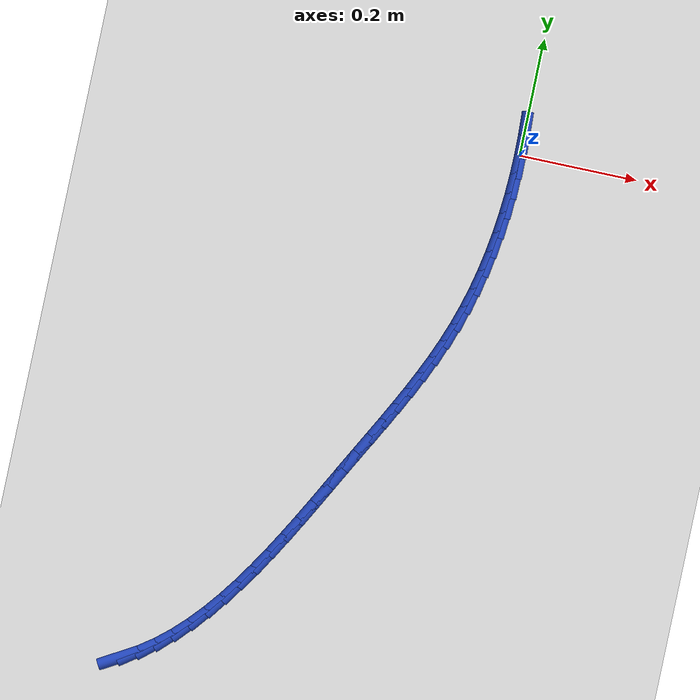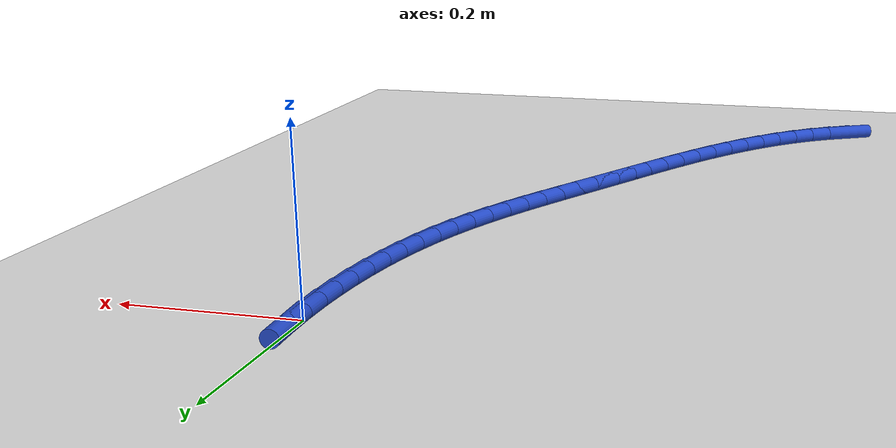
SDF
<sdf version="1.6">
 <world name="default">
  <model name="ground_plane">
   <static>1</static>
   <link name="link">
    <collision name="collision">
     <geometry><plane><normal>0 0 1</normal><size>100 100</size></plane></geometry>
     <surface><friction><ode><mu>100</mu><mu2>50</mu2></ode></friction></surface>
    </collision>
    <visual name="visual">
     <cast_shadows>0</cast_shadows>
     <geometry><plane><normal>0 0 1</normal><size>100 100</size></plane></geometry>
     <material>
      <script><uri>file://media/materials/scripts/gazebo.material</uri><name>Gazebo/WhiteGlow</name></script>
     </material>
    </visual>
   </link>
  </model>
  <model name="line">
   <link name="link_0">
    <pose>4.336808689942018e-18 6.245004513516506e-17 0.01 0 1.57 -1.5543038587531324</pose>
    <collision name="collision">
     <geometry><cylinder><radius>0.01</radius><length>0.08</length></cylinder></geometry>
    </collision>
    <visual name="visual">
     <material>
      <script><name>Gazebo/Blue</name><uri>file://media/materials/scripts/gazebo.material</uri></script>
     </material>
     <geometry><cylinder><radius>0.01</radius><length>0.08</length></cylinder></geometry>
    </visual>
   </link>
   <link name="link_178">
    <pose>-0.48115302155594414 -0.9624422230963506 0.01 0 1.57 0.5241851422341539</pose>
    <collision name="collision">
     <geometry><cylinder><radius>0.01</radius><length>0.08</length></cylinder></geometry>
    </collision>
    <visual name="visual">
     <material>
      <script><name>Gazebo/Blue</name><uri>file://media/materials/scripts/gazebo.material</uri></script>
     </material>
     <geometry><cylinder><radius>0.01</radius><length>0.08</length></cylinder></geometry>
    </visual>
   </link>
   <link name="link_179">
    <pose>-0.45351048103301 -0.9464611760117178 0.01 0 1.57 0.6187918458690828</pose>
    <collision name="collision">
     <geometry><cylinder><radius>0.01</radius><length>0.08</length></cylinder></geometry>
    </collision>
    <visual name="visual">
     <material>
      <script><name>Gazebo/Blue</name><uri>file://media/materials/scripts/gazebo.material</uri></script>
     </material>
     <geometry><cylinder><radius>0.01</radius><length>0.08</length></cylinder></geometry>
    </visual>
   </link>
   <link name="link_180">
    <pose>-0.4271974442009182 -0.9277240132820715 0.01 0 1.57 0.702849490435734</pose>
    <collision name="collision">
     <geometry><cylinder><radius>0.01</radius><length>0.08</length></cylinder></geometry>
    </collision>
    <visual name="visual">
     <material>
      <script><name>Gazebo/Blue</name><uri>file://media/materials/scripts/gazebo.material</uri></script>
     </material>
     <geometry><cylinder><radius>0.01</radius><length>0.08</length></cylinder></geometry>
    </visual>
   </link>
   <link name="link_181">
    <pose>-0.4021246388630939 -0.9064830553623443 0.01 0 1.57 0.7763417850840822</pose>
    <collision name="collision">
     <geometry><cylinder><radius>0.01</radius><length>0.08</length></cylinder></geometry>
    </collision>
    <visual name="visual">
     <material>
      <script><name>Gazebo/Blue</name><uri>file://media/materials/scripts/gazebo.material</uri></script>
     </material>
     <geometry><cylinder><radius>0.01</radius><length>0.08</length></cylinder></geometry>
    </visual>
   </link>
   <link name="link_182">
    <pose>-0.37820279282296215 -0.8829906227074681 0.01 0 1.57 0.839767134298008</pose>
    <collision name="collision">
     <geometry><cylinder><radius>0.01</radius><length>0.08</length></cylinder></geometry>
    </collision>
    <visual name="visual">
     <material>
      <script><name>Gazebo/Blue</name><uri>file://media/materials/scripts/gazebo.material</uri></script>
     </material>
     <geometry><cylinder><radius>0.01</radius><length>0.08</length></cylinder></geometry>
    </visual>
   </link>
   <link name="link_183">
    <pose>-0.35534263388394766 -0.8574990357723743 0.01 0 1.57 0.893887557208069</pose>
    <collision name="collision">
     <geometry><cylinder><radius>0.01</radius><length>0.08</length></cylinder></geometry>
    </collision>
    <visual name="visual">
     <material>
      <script><name>Gazebo/Blue</name><uri>file://media/materials/scripts/gazebo.material</uri></script>
     </material>
     <geometry><cylinder><radius>0.01</radius><length>0.08</length></cylinder></geometry>
    </visual>
   </link>
   <link name="link_184">
    <pose>-0.3334548898494765 -0.8302606150119963 0.01 0 1.57 0.9395477755431357</pose>
    <collision name="collision">
     <geometry><cylinder><radius>0.01</radius><length>0.08</length></cylinder></geometry>
    </collision>
    <visual name="visual">
     <material>
      <script><name>Gazebo/Blue</name><uri>file://media/materials/scripts/gazebo.material</uri></script>
     </material>
     <geometry><cylinder><radius>0.01</radius><length>0.08</length></cylinder></geometry>
    </visual>
   </link>
   <link name="link_185">
    <pose>-0.3124502885229733 -0.8015276808812651 0.01 0 1.57 0.9775620496840356</pose>
    <collision name="collision">
     <geometry><cylinder><radius>0.01</radius><length>0.08</length></cylinder></geometry>
    </collision>
    <visual name="visual">
     <material>
      <script><name>Gazebo/Blue</name><uri>file://media/materials/scripts/gazebo.material</uri></script>
     </material>
     <geometry><cylinder><radius>0.01</radius><length>0.08</length></cylinder></geometry>
    </visual>
   </link>
   <link name="link_186">
    <pose>-0.2922395577078632 -0.7715525538351133 0.01 0 1.57 1.0086515950705515</pose>
    <collision name="collision">
     <geometry><cylinder><radius>0.01</radius><length>0.08</length></cylinder></geometry>
    </collision>
    <visual name="visual">
     <material>
      <script><name>Gazebo/Blue</name><uri>file://media/materials/scripts/gazebo.material</uri></script>
     </material>
     <geometry><cylinder><radius>0.01</radius><length>0.08</length></cylinder></geometry>
    </visual>
   </link>
   <link name="link_187">
    <pose>-0.2727334252075713 -0.7405875543284728 0.01 0 1.57 1.0334143062716705</pose>
    <collision name="collision">
     <geometry><cylinder><radius>0.01</radius><length>0.08</length></cylinder></geometry>
    </collision>
    <visual name="visual">
     <material>
      <script><name>Gazebo/Blue</name><uri>file://media/materials/scripts/gazebo.material</uri></script>
     </material>
     <geometry><cylinder><radius>0.01</radius><length>0.08</length></cylinder></geometry>
    </visual>
   </link>
   <link name="link_188">
    <pose>-0.25384261882552284 -0.7088850028162753 0.01 0 1.57 1.0523124700962294</pose>
    <collision name="collision">
     <geometry><cylinder><radius>0.01</radius><length>0.08</length></cylinder></geometry>
    </collision>
    <visual name="visual">
     <material>
      <script><name>Gazebo/Blue</name><uri>file://media/materials/scripts/gazebo.material</uri></script>
     </material>
     <geometry><cylinder><radius>0.01</radius><length>0.08</length></cylinder></geometry>
    </visual>
   </link>
   <link name="link_189">
    <pose>-0.2354778663651424 -0.6766972197534528 0.01 0 1.57 1.0656686712760748</pose>
    <collision name="collision">
     <geometry><cylinder><radius>0.01</radius><length>0.08</length></cylinder></geometry>
    </collision>
    <visual name="visual">
     <material>
      <script><name>Gazebo/Blue</name><uri>file://media/materials/scripts/gazebo.material</uri></script>
     </material>
     <geometry><cylinder><radius>0.01</radius><length>0.08</length></cylinder></geometry>
    </visual>
   </link>
   <link name="link_190">
    <pose>-0.21754989562985605 -0.6442765255949383 0.01 0 1.57 1.073663592370873</pose>
    <collision name="collision">
     <geometry><cylinder><radius>0.01</radius><length>0.08</length></cylinder></geometry>
    </collision>
    <visual name="visual">
     <material>
      <script><name>Gazebo/Blue</name><uri>file://media/materials/scripts/gazebo.material</uri></script>
     </material>
     <geometry><cylinder><radius>0.01</radius><length>0.08</length></cylinder></geometry>
    </visual>
   </link>
   <link name="link_191">
    <pose>-0.1999694344230884 -0.6118752407956634 0.01 0 1.57 1.0763316610976446</pose>
    <collision name="collision">
     <geometry><cylinder><radius>0.01</radius><length>0.08</length></cylinder></geometry>
    </collision>
    <visual name="visual">
     <material>
      <script><name>Gazebo/Blue</name><uri>file://media/materials/scripts/gazebo.material</uri></script>
     </material>
     <geometry><cylinder><radius>0.01</radius><length>0.08</length></cylinder></geometry>
    </visual>
   </link>
   <link name="link_192">
    <pose>-0.18264721054826452 -0.5797456858105599 0.01 0 1.57 1.073759506031522</pose>
    <collision name="collision">
     <geometry><cylinder><radius>0.01</radius><length>0.08</length></cylinder></geometry>
    </collision>
    <visual name="visual">
     <material>
      <script><name>Gazebo/Blue</name><uri>file://media/materials/scripts/gazebo.material</uri></script>
     </material>
     <geometry><cylinder><radius>0.01</radius><length>0.08</length></cylinder></geometry>
    </visual>
   </link>
   <link name="link_193">
    <pose>-0.16549830138899674 -0.5481325304587201 0.01 0 1.57 1.0709689330692567</pose>
    <collision name="collision">
     <geometry><cylinder><radius>0.01</radius><length>0.08</length></cylinder></geometry>
    </collision>
    <visual name="visual">
     <material>
      <script><name>Gazebo/Blue</name><uri>file://media/materials/scripts/gazebo.material</uri></script>
     </material>
     <geometry><cylinder><radius>0.01</radius><length>0.08</length></cylinder></geometry>
    </visual>
   </link>
   <link name="link_194">
    <pose>-0.14854635752871342 -0.5170894711829342 0.01 0 1.57 1.0735528860489014</pose>
    <collision name="collision">
     <geometry><cylinder><radius>0.01</radius><length>0.08</length></cylinder></geometry>
    </collision>
    <visual name="visual">
     <material>
      <script><name>Gazebo/Blue</name><uri>file://media/materials/scripts/gazebo.material</uri></script>
     </material>
     <geometry><cylinder><radius>0.01</radius><length>0.08</length></cylinder></geometry>
    </visual>
   </link>
   <link name="link_195">
    <pose>-0.13192856607837128 -0.48647050087085975 0.01 0 1.57 1.0820122950594768</pose>
    <collision name="collision">
     <geometry><cylinder><radius>0.01</radius><length>0.08</length></cylinder></geometry>
    </collision>
    <visual name="visual">
     <material>
      <script><name>Gazebo/Blue</name><uri>file://media/materials/scripts/gazebo.material</uri></script>
     </material>
     <geometry><cylinder><radius>0.01</radius><length>0.08</length></cylinder></geometry>
    </visual>
   </link>
   <link name="link_196">
    <pose>-0.11578745701646695 -0.4561202146448199 0.01 0 1.57 1.0965329352159165</pose>
    <collision name="collision">
     <geometry><cylinder><radius>0.01</radius><length>0.08</length></cylinder></geometry>
    </collision>
    <visual name="visual">
     <material>
      <script><name>Gazebo/Blue</name><uri>file://media/materials/scripts/gazebo.material</uri></script>
     </material>
     <geometry><cylinder><radius>0.01</radius><length>0.08</length></cylinder></geometry>
    </visual>
   </link>
   <link name="link_197">
    <pose>-0.10026556032149823 -0.4258832076271406 0.01 0 1.57 1.1172232562392506</pose>
    <collision name="collision">
     <geometry><cylinder><radius>0.01</radius><length>0.08</length></cylinder></geometry>
    </collision>
    <visual name="visual">
     <material>
      <script><name>Gazebo/Blue</name><uri>file://media/materials/scripts/gazebo.material</uri></script>
     </material>
     <geometry><cylinder><radius>0.01</radius><length>0.08</length></cylinder></geometry>
    </visual>
   </link>
   <link name="link_198">
    <pose>-0.08550540597196175 -0.3956040749401452 0.01 0 1.57 1.1440912456581551</pose>
    <collision name="collision">
     <geometry><cylinder><radius>0.01</radius><length>0.08</length></cylinder></geometry>
    </collision>
    <visual name="visual">
     <material>
      <script><name>Gazebo/Blue</name><uri>file://media/materials/scripts/gazebo.material</uri></script>
     </material>
     <geometry><cylinder><radius>0.01</radius><length>0.08</length></cylinder></geometry>
    </visual>
   </link>
   <link name="link_199">
    <pose>-0.07164952394635454 -0.3651274117061581 0.01 0 1.57 1.1770168104961982</pose>
    <collision name="collision">
     <geometry><cylinder><radius>0.01</radius><length>0.08</length></cylinder></geometry>
    </collision>
    <visual name="visual">
     <material>
      <script><name>Gazebo/Blue</name><uri>file://media/materials/scripts/gazebo.material</uri></script>
     </material>
     <geometry><cylinder><radius>0.01</radius><length>0.08</length></cylinder></geometry>
    </visual>
   </link>
   <link name="link_200">
    <pose>-0.058840444223173666 -0.3342978130475036 0.01 0 1.57 1.2157230313352252</pose>
    <collision name="collision">
     <geometry><cylinder><radius>0.01</radius><length>0.08</length></cylinder></geometry>
    </collision>
    <visual name="visual">
     <material>
      <script><name>Gazebo/Blue</name><uri>file://media/materials/scripts/gazebo.material</uri></script>
     </material>
     <geometry><cylinder><radius>0.01</radius><length>0.08</length></cylinder></geometry>
    </visual>
   </link>
   <link name="link_201">
    <pose>-0.04722069678091614 -0.3029598740865058 0.01 0 1.57 1.2592582764890345</pose>
    <collision name="collision">
     <geometry><cylinder><radius>0.01</radius><length>0.08</length></cylinder></geometry>
    </collision>
    <visual name="visual">
     <material>
      <script><name>Gazebo/Blue</name><uri>file://media/materials/scripts/gazebo.material</uri></script>
     </material>
     <geometry><cylinder><radius>0.01</radius><length>0.08</length></cylinder></geometry>
    </visual>
   </link>
   <link name="link_202">
    <pose>-0.036920802747805966 -0.2709750305137507 0.01 0 1.57 1.3028084210625415</pose>
    <collision name="collision">
     <geometry><cylinder><radius>0.01</radius><length>0.08</length></cylinder></geometry>
    </collision>
    <visual name="visual">
     <material>
      <script><name>Gazebo/Blue</name><uri>file://media/materials/scripts/gazebo.material</uri></script>
     </material>
     <geometry><cylinder><radius>0.01</radius><length>0.08</length></cylinder></geometry>
    </visual>
   </link>
   <link name="link_203">
    <pose>-0.02796372001948808 -0.23835555893462218 0.01 0 1.57 1.344135687773631</pose>
    <collision name="collision">
     <geometry><cylinder><radius>0.01</radius><length>0.08</length></cylinder></geometry>
    </collision>
    <visual name="visual">
     <material>
      <script><name>Gazebo/Blue</name><uri>file://media/materials/scripts/gazebo.material</uri></script>
     </material>
     <geometry><cylinder><radius>0.01</radius><length>0.08</length></cylinder></geometry>
    </visual>
   </link>
   <link name="link_204">
    <pose>-0.0203157065162117 -0.20519324896236046 0.01 0 1.57 1.3834136281913132</pose>
    <collision name="collision">
     <geometry><cylinder><radius>0.01</radius><length>0.08</length></cylinder></geometry>
    </collision>
    <visual name="visual">
     <material>
      <script><name>Gazebo/Blue</name><uri>file://media/materials/scripts/gazebo.material</uri></script>
     </material>
     <geometry><cylinder><radius>0.01</radius><length>0.08</length></cylinder></geometry>
    </visual>
   </link>
   <link name="link_205">
    <pose>-0.013942510823290672 -0.17158060447423365 0.01 0 1.57 1.4208396658862024</pose>
    <collision name="collision">
     <geometry><cylinder><radius>0.01</radius><length>0.08</length></cylinder></geometry>
    </collision>
    <visual name="visual">
     <material>
      <script><name>Gazebo/Blue</name><uri>file://media/materials/scripts/gazebo.material</uri></script>
     </material>
     <geometry><cylinder><radius>0.01</radius><length>0.08</length></cylinder></geometry>
    </visual>
   </link>
   <link name="link_206">
    <pose>-0.008809881526038827 -0.13761012934750955 0.01 0 1.57 1.4566107365410146</pose>
    <collision name="collision">
     <geometry><cylinder><radius>0.01</radius><length>0.08</length></cylinder></geometry>
    </collision>
    <visual name="visual">
     <material>
      <script><name>Gazebo/Blue</name><uri>file://media/materials/scripts/gazebo.material</uri></script>
     </material>
     <geometry><cylinder><radius>0.01</radius><length>0.08</length></cylinder></geometry>
    </visual>
   </link>
   <link name="link_207">
    <pose>-0.004883567209769999 -0.10337432745945621 0.01 0 1.57 1.4909212699057037</pose>
    <collision name="collision">
     <geometry><cylinder><radius>0.01</radius><length>0.08</length></cylinder></geometry>
    </collision>
    <visual name="visual">
     <material>
      <script><name>Gazebo/Blue</name><uri>file://media/materials/scripts/gazebo.material</uri></script>
     </material>
     <geometry><cylinder><radius>0.01</radius><length>0.08</length></cylinder></geometry>
    </visual>
   </link>
   <link name="link_208">
    <pose>-0.002129316459798025 -0.06896570268734145 0.01 0 1.57 1.523962286616702</pose>
    <collision name="collision">
     <geometry><cylinder><radius>0.01</radius><length>0.08</length></cylinder></geometry>
    </collision>
    <visual name="visual">
     <material>
      <script><name>Gazebo/Blue</name><uri>file://media/materials/scripts/gazebo.material</uri></script>
     </material>
     <geometry><cylinder><radius>0.01</radius><length>0.08</length></cylinder></geometry>
    </visual>
   </link>
   <link name="link_209">
    <pose>-0.0005128778614367177 -0.034476758908432534 0.01 0 1.57 1.5559213776998795</pose>
    <collision name="collision">
     <geometry><cylinder><radius>0.01</radius><length>0.08</length></cylinder></geometry>
    </collision>
    <visual name="visual">
     <material>
      <script><name>Gazebo/Blue</name><uri>file://media/materials/scripts/gazebo.material</uri></script>
     </material>
     <geometry><cylinder><radius>0.01</radius><length>0.08</length></cylinder></geometry>
    </visual>
   </link>
   <link name="link_210">
    <pose>1.1275702593849246e-17 2.498001805406602e-16 0.01 0 1.57 -1.5546092639138598</pose>
    <collision name="collision">
     <geometry><cylinder><radius>0.01</radius><length>0.08</length></cylinder></geometry>
    </collision>
    <visual name="visual">
     <material>
      <script><name>Gazebo/Blue</name><uri>file://media/materials/scripts/gazebo.material</uri></script>
     </material>
     <geometry><cylinder><radius>0.01</radius><length>0.08</length></cylinder></geometry>
    </visual>
   </link>
   <link name="link_211">
    <pose>-0.0005564314608015944 0.03437207016069139 0.01 0 1.57 -1.5242609620545406</pose>
    <collision name="collision">
     <geometry><cylinder><radius>0.01</radius><length>0.08</length></cylinder></geometry>
    </collision>
    <visual name="visual">
     <material>
      <script><name>Gazebo/Blue</name><uri>file://media/materials/scripts/gazebo.material</uri></script>
     </material>
     <geometry><cylinder><radius>0.01</radius><length>0.08</length></cylinder></geometry>
    </visual>
   </link>
  </model>
 </world>
</sdf>
